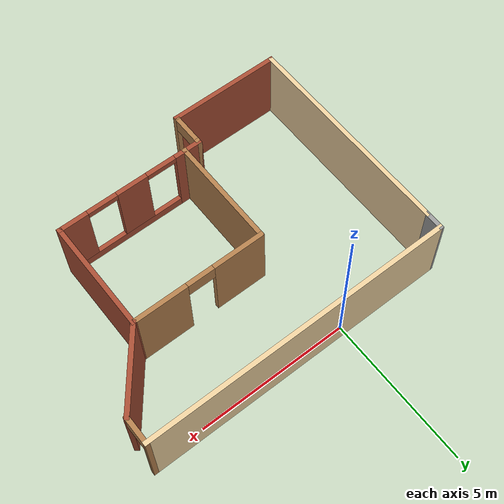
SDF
<?xml version='1.0'?>
<sdf version='1.6'>
  <model name='Number25'>
    <pose frame=''>1.69693 -3.66857 0 0 -0 0</pose>
    <link name='Wall_13'>
      <collision name='Wall_13_Collision'>
        <geometry>
          <box>
            <size>0.692161 0.15 2.5</size>
          </box>
        </geometry>
        <pose frame=''>0 0 1.25 0 -0 0</pose>
      </collision>
      <visual name='Wall_13_Visual'>
        <pose frame=''>0 0 1.25 0 -0 0</pose>
        <geometry>
          <box>
            <size>0.692161 0.15 2.5</size>
          </box>
        </geometry>
        <material>
          <script>
            <uri>file://media/materials/scripts/gazebo.material</uri>
            <name>Gazebo/Grey</name>
          </script>
          <ambient>1 1 1 1</ambient>
        </material>
        <meta>
          <layer>0</layer>
        </meta>
      </visual>
      <pose frame=''>-5.06482 3.54964 0 0 -0 1.56115</pose>
    </link>
    <link name='Wall_15'>
      <pose frame=''>5.0378 3.39571 0 0 0 -1.5708</pose>
      <visual name='Wall_15_Visual_0'>
        <pose frame=''>-0.45274 0 1.25 0 -0 0</pose>
        <geometry>
          <box>
            <size>0.09452 0.15 2.5</size>
          </box>
        </geometry>
        <material>
          <script>
            <uri>file://media/materials/scripts/gazebo.material</uri>
            <name>Gazebo/Wood</name>
          </script>
          <ambient>1 1 1 1</ambient>
        </material>
        <meta>
          <layer>0</layer>
        </meta>
      </visual>
      <collision name='Wall_15_Collision_0'>
        <geometry>
          <box>
            <size>0.09452 0.15 2.5</size>
          </box>
        </geometry>
        <pose frame=''>-0.45274 0 1.25 0 -0 0</pose>
      </collision>
      <visual name='Wall_15_Visual_1'>
        <pose frame=''>0.49726 0 1.25 0 -0 0</pose>
        <geometry>
          <box>
            <size>0.00548 0.15 2.5</size>
          </box>
        </geometry>
        <material>
          <script>
            <uri>file://media/materials/scripts/gazebo.material</uri>
            <name>Gazebo/Wood</name>
          </script>
          <ambient>1 1 1 1</ambient>
        </material>
        <meta>
          <layer>0</layer>
        </meta>
      </visual>
      <collision name='Wall_15_Collision_1'>
        <geometry>
          <box>
            <size>0.00548 0.15 2.5</size>
          </box>
        </geometry>
        <pose frame=''>0.49726 0 1.25 0 -0 0</pose>
      </collision>
      <visual name='Wall_15_Visual_2'>
        <pose frame=''>0.04452 0 2.25 0 -0 0</pose>
        <geometry>
          <box>
            <size>0.9 0.15 0.5</size>
          </box>
        </geometry>
        <material>
          <script>
            <uri>file://media/materials/scripts/gazebo.material</uri>
            <name>Gazebo/Wood</name>
          </script>
          <ambient>1 1 1 1</ambient>
        </material>
        <meta>
          <layer>0</layer>
        </meta>
      </visual>
      <collision name='Wall_15_Collision_2'>
        <geometry>
          <box>
            <size>0.9 0.15 0.5</size>
          </box>
        </geometry>
        <pose frame=''>0.04452 0 2.25 0 -0 0</pose>
      </collision>
    </link>
    <link name='Wall_18'>
      <pose frame=''>1.20757 0.878573 0 0 -0 3.14159</pose>
      <visual name='Wall_18_Visual_0'>
        <pose frame=''>-1.32361 0 1.25 0 -0 0</pose>
        <geometry>
          <box>
            <size>1.85278 0.15 2.5</size>
          </box>
        </geometry>
        <material>
          <script>
            <uri>file://media/materials/scripts/gazebo.material</uri>
            <name>Gazebo/Wood</name>
          </script>
          <ambient>0.921569 0.807843 0.615686 1</ambient>
        </material>
        <meta>
          <layer>0</layer>
        </meta>
      </visual>
      <collision name='Wall_18_Collision_0'>
        <geometry>
          <box>
            <size>1.85278 0.15 2.5</size>
          </box>
        </geometry>
        <pose frame=''>-1.32361 0 1.25 0 -0 0</pose>
      </collision>
      <visual name='Wall_18_Visual_1'>
        <pose frame=''>1.37639 0 1.25 0 -0 0</pose>
        <geometry>
          <box>
            <size>1.74722 0.15 2.5</size>
          </box>
        </geometry>
        <material>
          <script>
            <uri>file://media/materials/scripts/gazebo.material</uri>
            <name>Gazebo/Wood</name>
          </script>
          <ambient>0.921569 0.807843 0.615686 1</ambient>
        </material>
        <meta>
          <layer>0</layer>
        </meta>
      </visual>
      <collision name='Wall_18_Collision_1'>
        <geometry>
          <box>
            <size>1.74722 0.15 2.5</size>
          </box>
        </geometry>
        <pose frame=''>1.37639 0 1.25 0 -0 0</pose>
      </collision>
      <visual name='Wall_18_Visual_2'>
        <pose frame=''>0.052781 0 2.25 0 -0 0</pose>
        <geometry>
          <box>
            <size>0.9 0.15 0.5</size>
          </box>
        </geometry>
        <material>
          <script>
            <uri>file://media/materials/scripts/gazebo.material</uri>
            <name>Gazebo/Wood</name>
          </script>
          <ambient>0.921569 0.807843 0.615686 1</ambient>
        </material>
        <meta>
          <layer>0</layer>
        </meta>
      </visual>
      <collision name='Wall_18_Collision_2'>
        <geometry>
          <box>
            <size>0.9 0.15 0.5</size>
          </box>
        </geometry>
        <pose frame=''>0.052781 0 2.25 0 -0 0</pose>
      </collision>
    </link>
    <link name='Wall_2'>
      <collision name='Wall_2_Collision'>
        <geometry>
          <box>
            <size>7.25 0.15 2.5</size>
          </box>
        </geometry>
        <pose frame=''>0 0 1.25 0 -0 0</pose>
      </collision>
      <visual name='Wall_2_Visual'>
        <pose frame=''>0 0 1.25 0 -0 0</pose>
        <geometry>
          <box>
            <size>7.25 0.15 2.5</size>
          </box>
        </geometry>
        <material>
          <script>
            <uri>file://media/materials/scripts/gazebo.material</uri>
            <name>Gazebo/Grey</name>
          </script>
          <ambient>0.921569 0.807843 0.615686 1</ambient>
        </material>
        <meta>
          <layer>0</layer>
        </meta>
      </visual>
      <pose frame=''>-5.06743 -0.271428 0 0 0 -1.5708</pose>
    </link>
    <link name='Wall_20'>
      <collision name='Wall_20_Collision'>
        <geometry>
          <box>
            <size>3.75 0.15 2.5</size>
          </box>
        </geometry>
        <pose frame=''>0 0 1.25 0 -0 0</pose>
      </collision>
      <visual name='Wall_20_Visual'>
        <pose frame=''>0 0 1.25 0 -0 0</pose>
        <geometry>
          <box>
            <size>3.75 0.15 2.5</size>
          </box>
        </geometry>
        <material>
          <script>
            <uri>file://media/materials/scripts/gazebo.material</uri>
            <name>Gazebo/Wood</name>
          </script>
          <ambient>0.921569 0.807843 0.615686 1</ambient>
        </material>
        <meta>
          <layer>0</layer>
        </meta>
      </visual>
      <pose frame=''>-0.96743 -0.921428 0 0 0 -1.5708</pose>
    </link>
    <link name='Wall_3'>
      <collision name='Wall_3_Collision'>
        <geometry>
          <box>
            <size>3.75 0.15 2.5</size>
          </box>
        </geometry>
        <pose frame=''>0 0 1.25 0 -0 0</pose>
      </collision>
      <visual name='Wall_3_Visual'>
        <pose frame=''>0 0 1.25 0 -0 0</pose>
        <geometry>
          <box>
            <size>3.75 0.15 2.5</size>
          </box>
        </geometry>
        <material>
          <script>
            <uri>file://media/materials/scripts/gazebo.material</uri>
            <name>Gazebo/Bricks</name>
          </script>
          <ambient>1 1 1 1</ambient>
        </material>
        <meta>
          <layer>0</layer>
        </meta>
      </visual>
      <pose frame=''>-3.26743 -3.82143 0 0 -0 0</pose>
    </link>
    <link name='Wall_4'>
      <pose frame=''>-1.46743 -3.27143 0 0 -0 1.5708</pose>
      <visual name='Wall_4_Visual_0'>
        <pose frame=''>-0.549304 0 1.25 0 -0 0</pose>
        <geometry>
          <box>
            <size>0.151392 0.15 2.5</size>
          </box>
        </geometry>
        <material>
          <script>
            <uri>file://media/materials/scripts/gazebo.material</uri>
            <name>Gazebo/Wood</name>
          </script>
          <ambient>1 1 1 1</ambient>
        </material>
        <meta>
          <layer>0</layer>
        </meta>
      </visual>
      <collision name='Wall_4_Collision_0'>
        <geometry>
          <box>
            <size>0.151392 0.15 2.5</size>
          </box>
        </geometry>
        <pose frame=''>-0.549304 0 1.25 0 -0 0</pose>
      </collision>
      <visual name='Wall_4_Visual_1'>
        <pose frame=''>0.525696 0 1.25 0 -0 0</pose>
        <geometry>
          <box>
            <size>0.198608 0.15 2.5</size>
          </box>
        </geometry>
        <material>
          <script>
            <uri>file://media/materials/scripts/gazebo.material</uri>
            <name>Gazebo/Wood</name>
          </script>
          <ambient>1 1 1 1</ambient>
        </material>
        <meta>
          <layer>0</layer>
        </meta>
      </visual>
      <collision name='Wall_4_Collision_1'>
        <geometry>
          <box>
            <size>0.198608 0.15 2.5</size>
          </box>
        </geometry>
        <pose frame=''>0.525696 0 1.25 0 -0 0</pose>
      </collision>
      <visual name='Wall_4_Visual_2'>
        <pose frame=''>-0.023608 0 2.25 0 -0 0</pose>
        <geometry>
          <box>
            <size>0.9 0.15 0.5</size>
          </box>
        </geometry>
        <material>
          <script>
            <uri>file://media/materials/scripts/gazebo.material</uri>
            <name>Gazebo/Wood</name>
          </script>
          <ambient>1 1 1 1</ambient>
        </material>
        <meta>
          <layer>0</layer>
        </meta>
      </visual>
      <collision name='Wall_4_Collision_2'>
        <geometry>
          <box>
            <size>0.9 0.15 0.5</size>
          </box>
        </geometry>
        <pose frame=''>-0.023608 0 2.25 0 -0 0</pose>
      </collision>
    </link>
    <link name='Wall_5'>
      <pose frame=''>0.95757 -2.72143 0 0 -0 0</pose>
      <visual name='Wall_5_Visual_0'>
        <pose frame=''>-2.02406 0 1.25 0 -0 0</pose>
        <geometry>
          <box>
            <size>0.951877 0.15 2.5</size>
          </box>
        </geometry>
        <material>
          <script>
            <uri>file://media/materials/scripts/gazebo.material</uri>
            <name>Gazebo/Bricks</name>
          </script>
          <ambient>1 1 1 1</ambient>
        </material>
        <meta>
          <layer>0</layer>
        </meta>
      </visual>
      <collision name='Wall_5_Collision_0'>
        <geometry>
          <box>
            <size>0.951877 0.15 2.5</size>
          </box>
        </geometry>
        <pose frame=''>-2.02406 0 1.25 0 -0 0</pose>
      </collision>
      <visual name='Wall_5_Visual_1'>
        <pose frame=''>0.475938 0 0.15 0 -0 0</pose>
        <geometry>
          <box>
            <size>4.04812 0.15 0.3</size>
          </box>
        </geometry>
        <material>
          <script>
            <uri>file://media/materials/scripts/gazebo.material</uri>
            <name>Gazebo/Bricks</name>
          </script>
          <ambient>1 1 1 1</ambient>
        </material>
        <meta>
          <layer>0</layer>
        </meta>
      </visual>
      <collision name='Wall_5_Collision_1'>
        <geometry>
          <box>
            <size>4.04812 0.15 0.3</size>
          </box>
        </geometry>
        <pose frame=''>0.475938 0 0.15 0 -0 0</pose>
      </collision>
      <visual name='Wall_5_Visual_2'>
        <pose frame=''>-0.024954 0 1.4 0 -0 0</pose>
        <geometry>
          <box>
            <size>1.04634 0.15 2.2</size>
          </box>
        </geometry>
        <material>
          <script>
            <uri>file://media/materials/scripts/gazebo.material</uri>
            <name>Gazebo/Bricks</name>
          </script>
          <ambient>1 1 1 1</ambient>
        </material>
        <meta>
          <layer>0</layer>
        </meta>
      </visual>
      <collision name='Wall_5_Collision_2'>
        <geometry>
          <box>
            <size>1.04634 0.15 2.2</size>
          </box>
        </geometry>
        <pose frame=''>-0.024954 0 1.4 0 -0 0</pose>
      </collision>
      <visual name='Wall_5_Visual_3'>
        <pose frame=''>1.99911 0 1.4 0 -0 0</pose>
        <geometry>
          <box>
            <size>1.00179 0.15 2.2</size>
          </box>
        </geometry>
        <material>
          <script>
            <uri>file://media/materials/scripts/gazebo.material</uri>
            <name>Gazebo/Bricks</name>
          </script>
          <ambient>1 1 1 1</ambient>
        </material>
        <meta>
          <layer>0</layer>
        </meta>
      </visual>
      <collision name='Wall_5_Collision_3'>
        <geometry>
          <box>
            <size>1.00179 0.15 2.2</size>
          </box>
        </geometry>
        <pose frame=''>1.99911 0 1.4 0 -0 0</pose>
      </collision>
      <visual name='Wall_5_Visual_4'>
        <pose frame=''>-1.04812 0 2.4 0 -0 0</pose>
        <geometry>
          <box>
            <size>1 0.15 0.2</size>
          </box>
        </geometry>
        <material>
          <script>
            <uri>file://media/materials/scripts/gazebo.material</uri>
            <name>Gazebo/Bricks</name>
          </script>
          <ambient>1 1 1 1</ambient>
        </material>
        <meta>
          <layer>0</layer>
        </meta>
      </visual>
      <collision name='Wall_5_Collision_4'>
        <geometry>
          <box>
            <size>1 0.15 0.2</size>
          </box>
        </geometry>
        <pose frame=''>-1.04812 0 2.4 0 -0 0</pose>
      </collision>
      <visual name='Wall_5_Visual_5'>
        <pose frame=''>0.998214 0 2.4 0 -0 0</pose>
        <geometry>
          <box>
            <size>1 0.15 0.2</size>
          </box>
        </geometry>
        <material>
          <script>
            <uri>file://media/materials/scripts/gazebo.material</uri>
            <name>Gazebo/Bricks</name>
          </script>
          <ambient>1 1 1 1</ambient>
        </material>
        <meta>
          <layer>0</layer>
        </meta>
      </visual>
      <collision name='Wall_5_Collision_5'>
        <geometry>
          <box>
            <size>1 0.15 0.2</size>
          </box>
        </geometry>
        <pose frame=''>0.998214 0 2.4 0 -0 0</pose>
      </collision>
    </link>
    <link name='Wall_6'>
      <collision name='Wall_6_Collision'>
        <geometry>
          <box>
            <size>3.75 0.15 2.5</size>
          </box>
        </geometry>
        <pose frame=''>0 0 1.25 0 -0 0</pose>
      </collision>
      <visual name='Wall_6_Visual'>
        <pose frame=''>0 0 1.25 0 -0 0</pose>
        <geometry>
          <box>
            <size>3.75 0.15 2.5</size>
          </box>
        </geometry>
        <material>
          <script>
            <uri>file://media/materials/scripts/gazebo.material</uri>
            <name>Gazebo/Bricks</name>
          </script>
          <ambient>1 1 1 1</ambient>
        </material>
        <meta>
          <layer>0</layer>
        </meta>
      </visual>
      <pose frame=''>3.38257 -0.921428 0 0 -0 1.5708</pose>
    </link>
    <link name='Wall_7'>
      <collision name='Wall_7_Collision'>
        <geometry>
          <box>
            <size>2.81773 0.15 2.5</size>
          </box>
        </geometry>
        <pose frame=''>0 0 1.25 0 -0 0</pose>
      </collision>
      <visual name='Wall_7_Visual'>
        <pose frame=''>0 0 1.25 0 -0 0</pose>
        <geometry>
          <box>
            <size>2.81773 0.15 2.5</size>
          </box>
        </geometry>
        <material>
          <script>
            <uri>file://media/materials/scripts/gazebo.material</uri>
            <name>Gazebo/Bricks</name>
          </script>
          <ambient>1 1 1 1</ambient>
        </material>
        <meta>
          <layer>0</layer>
        </meta>
      </visual>
      <pose frame=''>4.21018 1.92464 0 0 -0 0.901465</pose>
    </link>
    <link name='Wall_9'>
      <collision name='Wall_9_Collision'>
        <geometry>
          <box>
            <size>10.25 0.15 2.5</size>
          </box>
        </geometry>
        <pose frame=''>0 0 1.25 0 -0 0</pose>
      </collision>
      <visual name='Wall_9_Visual'>
        <pose frame=''>0 0 1.25 0 -0 0</pose>
        <geometry>
          <box>
            <size>10.25 0.15 2.5</size>
          </box>
        </geometry>
        <material>
          <script>
            <uri>file://media/materials/scripts/gazebo.material</uri>
            <name>Gazebo/Grey</name>
          </script>
          <ambient>0.921569 0.807843 0.615686 1</ambient>
        </material>
        <meta>
          <layer>0</layer>
        </meta>
      </visual>
      <pose frame=''>-0.012202 3.82071 0 0 -0 3.14159</pose>
    </link>
    <static>1</static>
  </model>
</sdf>
